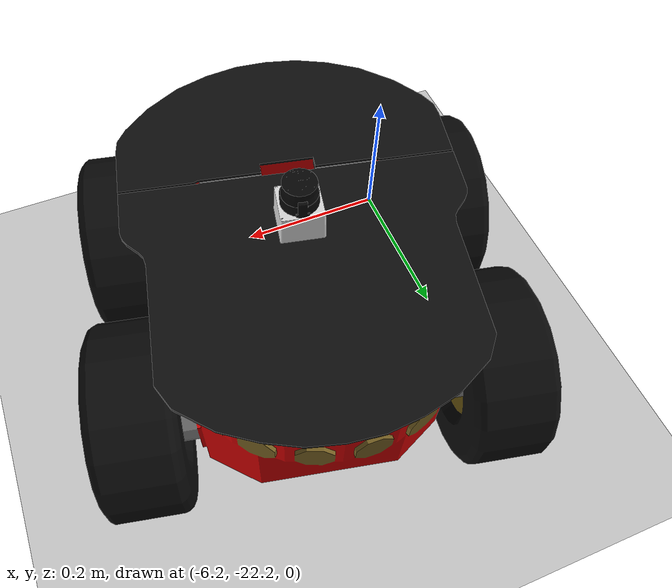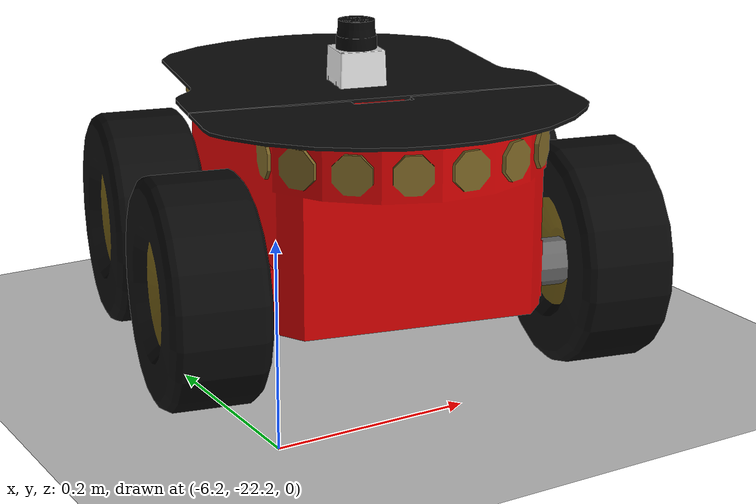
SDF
<sdf version="1.3">
 <world name="default">
  <light name="sun" type="directional">
   <pose>0.000000 0.000000 10.000000 0.000000 0.000000 0.000000</pose>
   <diffuse>0.800000 0.800000 0.800000 1.000000</diffuse>
   <specular>0.100000 0.100000 0.100000 1.000000</specular>
   <attenuation>
    <range>1000.000000</range>
    <constant>0.900000</constant>
    <linear>0.010000</linear>
    <quadratic>0.001000</quadratic>
   </attenuation>
   <direction>-0.500000 0.500000 -1.000000</direction>
  </light>
  <model name="ground_plane">
   <static>1</static>
   <link name="link">
    <collision name="collision">
     <geometry>
      <plane><normal>0.000000 0.000000 1.000000</normal><size>100.000000 100.000000</size></plane>
     </geometry>
     <surface><friction><ode><mu>100.000000</mu><mu2>50.000000</mu2></ode></friction></surface>
    </collision>
    <visual name="visual">
     <cast_shadows>0</cast_shadows>
     <geometry>
      <plane><normal>0.000000 0.000000 1.000000</normal><size>100.000000 100.000000</size></plane>
     </geometry>
     <material>
      <script><uri>file://media/materials/scripts/gazebo.material</uri><name>Gazebo/Grey</name></script>
     </material>
    </visual>
    <velocity_decay><linear>0.000000</linear><angular>0.000000</angular></velocity_decay>
   </link>
  </model>
  <physics type="ode">
   <update_rate>1000.000000</update_rate>
   <gravity>0.000000 0.000000 -9.800000</gravity>
  </physics>
  <scene>
   <ambient>0.200000 0.200000 0.200000 1.000000</ambient>
   <background>0.700000 0.700000 0.700000 1.000000</background>
   <shadows>1</shadows>
  </scene>
  <model name="Pioneer3AT">
   <pose>-6 -22 0.18 0 0 -1.785000</pose>
   <static>0</static>
   <link name="chassis">
    <inertial>
     <mass>14.000000</mass>
     <inertia>
      <ixx>0.333800</ixx>
      <ixy>0.000000</ixy>
      <ixz>0.000000</ixz>
      <iyy>0.478300</iyy>
      <iyz>0.000000</iyz>
      <izz>0.333800</izz>
     </inertia>
    </inertial>
    <collision name="collision">
     <geometry><box><size>0.501000 0.400000 0.190000</size></box></geometry>
    </collision>
    <visual name="visual">
     <geometry><mesh><uri>model://pioneer3at/meshes/chassis.dae</uri></mesh></geometry>
    </visual>
    <velocity_decay><linear>0.000000</linear><angular>0.000000</angular></velocity_decay>
   </link>
   <link name="right_front_wheel">
    <pose>0.125000 -0.201000 -0.060000 1.570700 0.000000 0.000000</pose>
    <collision name="collision">
     <geometry><cylinder><radius>0.110000</radius><length>0.075000</length></cylinder></geometry>
     <surface>
      <friction>
       <ode><mu>1.000000</mu><mu2>1.000000</mu2><slip1>0.500000</slip1><slip2>0.000000</slip2></ode>
      </friction>
     </surface>
    </collision>
    <visual name="visual">
     <geometry><mesh><uri>model://pioneer3at/meshes/wheel.dae</uri></mesh></geometry>
    </visual>
    <velocity_decay><linear>0.000000</linear><angular>0.000000</angular></velocity_decay>
    <inertial>
     <inertia>
      <ixx>1.000000</ixx>
      <ixy>0.000000</ixy>
      <ixz>0.000000</ixz>
      <iyy>1.000000</iyy>
      <iyz>0.000000</iyz>
      <izz>1.000000</izz>
     </inertia>
     <mass>1.000000</mass>
    </inertial>
   </link>
   <link name="left_front_wheel">
    <pose>0.125000 0.201000 -0.060000 1.570700 0.000000 0.000000</pose>
    <collision name="collision">
     <geometry><cylinder><radius>0.110000</radius><length>0.075000</length></cylinder></geometry>
     <surface>
      <friction>
       <ode><mu>1.000000</mu><mu2>1.000000</mu2><slip1>0.500000</slip1><slip2>0.000000</slip2></ode>
      </friction>
     </surface>
    </collision>
    <visual name="visual">
     <geometry><mesh><uri>model://pioneer3at/meshes/wheel.dae</uri></mesh></geometry>
    </visual>
    <velocity_decay><linear>0.000000</linear><angular>0.000000</angular></velocity_decay>
    <inertial>
     <inertia>
      <ixx>1.000000</ixx>
      <ixy>0.000000</ixy>
      <ixz>0.000000</ixz>
      <iyy>1.000000</iyy>
      <iyz>0.000000</iyz>
      <izz>1.000000</izz>
     </inertia>
     <mass>1.000000</mass>
    </inertial>
   </link>
   <link name="right_rear_wheel">
    <pose>-0.125000 -0.201000 -0.060000 1.570700 0.000000 0.000000</pose>
    <collision name="collision">
     <geometry><cylinder><radius>0.110000</radius><length>0.075000</length></cylinder></geometry>
     <surface>
      <friction>
       <ode><mu>1.000000</mu><mu2>1.000000</mu2><slip1>0.500000</slip1><slip2>0.000000</slip2></ode>
      </friction>
     </surface>
    </collision>
    <visual name="visual">
     <geometry><mesh><uri>model://pioneer3at/meshes/wheel.dae</uri></mesh></geometry>
    </visual>
    <velocity_decay><linear>0.000000</linear><angular>0.000000</angular></velocity_decay>
    <inertial>
     <inertia>
      <ixx>1.000000</ixx>
      <ixy>0.000000</ixy>
      <ixz>0.000000</ixz>
      <iyy>1.000000</iyy>
      <iyz>0.000000</iyz>
      <izz>1.000000</izz>
     </inertia>
     <mass>1.000000</mass>
    </inertial>
   </link>
   <link name="left_rear_wheel">
    <pose>-0.125000 0.201000 -0.060000 1.570700 0.000000 0.000000</pose>
    <collision name="collision">
     <geometry><cylinder><radius>0.110000</radius><length>0.075000</length></cylinder></geometry>
     <surface>
      <friction>
       <ode><mu>1.000000</mu><mu2>1.000000</mu2><slip1>0.500000</slip1><slip2>0.000000</slip2></ode>
      </friction>
     </surface>
    </collision>
    <visual name="visual">
     <geometry><mesh><uri>model://pioneer3at/meshes/wheel.dae</uri></mesh></geometry>
    </visual>
    <velocity_decay><linear>0.000000</linear><angular>0.000000</angular></velocity_decay>
    <inertial>
     <inertia>
      <ixx>1.000000</ixx>
      <ixy>0.000000</ixy>
      <ixz>0.000000</ixz>
      <iyy>1.000000</iyy>
      <iyz>0.000000</iyz>
      <izz>1.000000</izz>
     </inertia>
     <mass>1.000000</mass>
    </inertial>
   </link>
   <joint name="right_front" type="revolute">
    <child>right_front_wheel</child>
    <parent>chassis</parent>
    <axis>
     <xyz>0.000000 1.000000 0.000000</xyz>
     <limit><lower>-10000000000000000.000000</lower><upper>10000000000000000.000000</upper></limit>
    </axis>
   </joint>
   <joint name="right_rear" type="revolute">
    <child>right_rear_wheel</child>
    <parent>chassis</parent>
    <axis>
     <xyz>0.000000 1.000000 0.000000</xyz>
     <limit><lower>-10000000000000000.000000</lower><upper>10000000000000000.000000</upper></limit>
    </axis>
   </joint>
   <joint name="left_front" type="revolute">
    <child>left_front_wheel</child>
    <parent>chassis</parent>
    <axis>
     <xyz>0.000000 1.000000 0.000000</xyz>
     <limit><lower>-10000000000000000.000000</lower><upper>10000000000000000.000000</upper></limit>
    </axis>
   </joint>
   <joint name="left_rear" type="revolute">
    <child>left_rear_wheel</child>
    <parent>chassis</parent>
    <axis>
     <xyz>0.000000 1.000000 0.000000</xyz>
     <limit><lower>-10000000000000000.000000</lower><upper>10000000000000000.000000</upper></limit>
    </axis>
   </joint>
   <link name="sonar_link">
    <inertial>
     <mass>0.100000</mass>
     <inertia>
      <ixx>1.000000</ixx>
      <ixy>0.000000</ixy>
      <ixz>0.000000</ixz>
      <iyy>1.000000</iyy>
      <iyz>0.000000</iyz>
      <izz>1.000000</izz>
     </inertia>
    </inertial>
    <visual name="visual"><geometry><mesh><uri>model://hokuyo/meshes/hokuyo.dae</uri></mesh></geometry></visual>
    <collision name="collision-base">
     <pose>0.000000 0.000000 -0.014500 0.000000 0.000000 0.000000</pose>
     <geometry><box><size>0.050000 0.050000 0.041000</size></box></geometry>
    </collision>
    <collision name="collision-top">
     <pose>0.000000 0.000000 0.020500 0.000000 0.000000 0.000000</pose>
     <geometry><cylinder><radius>0.021000</radius><length>0.029000</length></cylinder></geometry>
    </collision>
    <sensor name="sonar_sensor_left" type="sonar">
     <pose>0 0 0 -3.010693 -1.47159 3.14159</pose>
     <sonar><min>0</min><max>1.5</max><radius>0.195</radius></sonar>
     <plugin name="sonar" filename="libSonarPlugin.so"/>
     <always_on>1</always_on>
     <update_rate>30</update_rate>
     <visualize>1</visualize>
    </sensor>
    <sensor name="sonar_sensor_right" type="sonar">
     <pose>0 0 0 3.010693 -1.47159 -3.14159</pose>
     <sonar><min>0</min><max>1.5</max><radius>0.195</radius></sonar>
     <plugin name="sonar" filename="libSonarPlugin.so"/>
     <always_on>1</always_on>
     <update_rate>30</update_rate>
     <visualize>1</visualize>
    </sensor>
    <velocity_decay><linear>0.000000</linear><angular>0.000000</angular></velocity_decay>
    <pose>0.000000 0.000000 0.130000 0.000000 0.000000 0.000000</pose>
   </link>
   <joint name="sonar_joint" type="revolute">
    <child>sonar_link</child>
    <parent>chassis</parent>
    <axis>
     <xyz>0.000000 0.000000 1.000000</xyz>
     <limit><upper>0.000000</upper><lower>0.000000</lower></limit>
    </axis>
   </joint>
   <plugin name="SkidSteerDrivePlugin" filename="libSkidSteerDrivePlugin.so"/>
  </model>
 </world>
</sdf>
